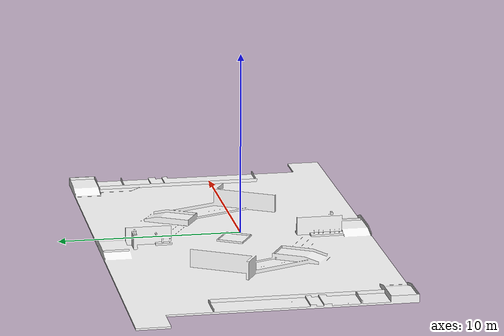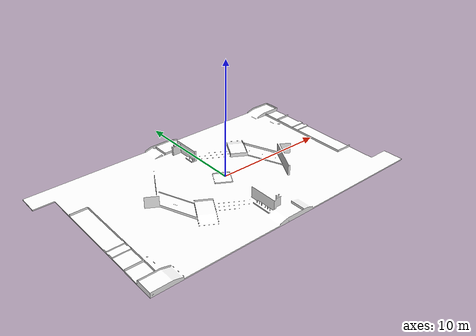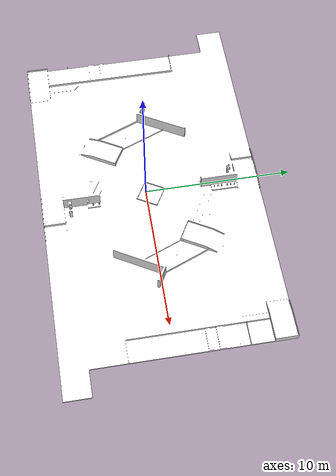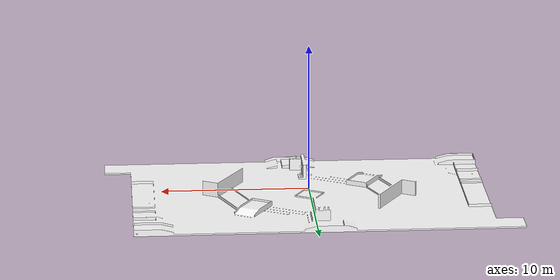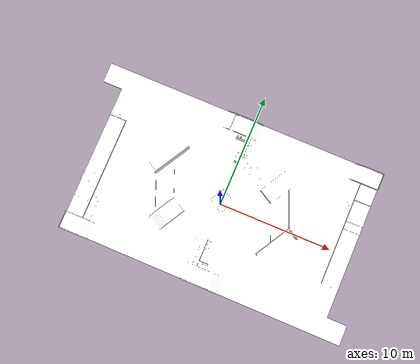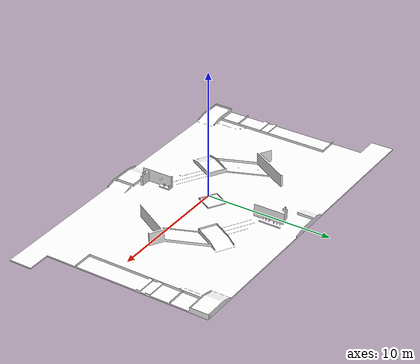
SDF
<?xml version="1.0" ?>
<sdf version="1.7">
  <world name="core2025_field">

    <!-- Physics settings -->
    <physics name="1ms" type="ignored">
      <max_step_size>0.001</max_step_size>
      <real_time_factor>1.0</real_time_factor>
    </physics>

    <!-- Scene settings -->
    <scene>
      <ambient>0.4 0.4 0.4</ambient>
      <background>0.7 0.7 0.7</background>
      <shadows>true</shadows>
    </scene>

    <!-- Lighting -->
    <light type="directional" name="sun">
      <cast_shadows>true</cast_shadows>
      <pose>0 0 10 0 0 0</pose>
      <diffuse>0.8 0.8 0.8 1</diffuse>
      <specular>0.2 0.2 0.2 1</specular>
      <attenuation>
        <range>1000</range>
        <constant>0.9</constant>
        <linear>0.01</linear>
        <quadratic>0.001</quadratic>
      </attenuation>
      <direction>-0.5 0.1 -0.9</direction>
    </light>

    <!-- 2025 Field Model -->
    <model name="field_2025">
      <static>true</static>
      <pose>0 0 0 0 0 0</pose>
      <link name="field_link">
        <collision name="field_collision">
          <geometry>
            <mesh>
              <uri>package://core2026/worlds/CoRE2025_Field.dae</uri>
              <scale>1 1 1</scale>
            </mesh>
          </geometry>
        </collision>
        <visual name="field_visual">
          <geometry>
            <mesh>
              <uri>package://core2026/worlds/CoRE2025_Field.dae</uri>
              <scale>1 1 1</scale>
            </mesh>
          </geometry>
          <material>
            <ambient>1.0 1.0 1.0 1.0</ambient>
            <diffuse>1.0 1.0 1.0 1.0</diffuse>
            <specular>0.1 0.1 0.1 1.0</specular>
          </material>
        </visual>
      </link>
    </model>

    <!-- Camera for better viewing -->
    <gui fullscreen='0'>
      <camera name='user_camera'>
        <pose>4 -4 2 0 0.3 2.3</pose>
        <view_controller>orbit</view_controller>
        <projection_type>perspective</projection_type>
      </camera>
    </gui>

  </world>
</sdf>
